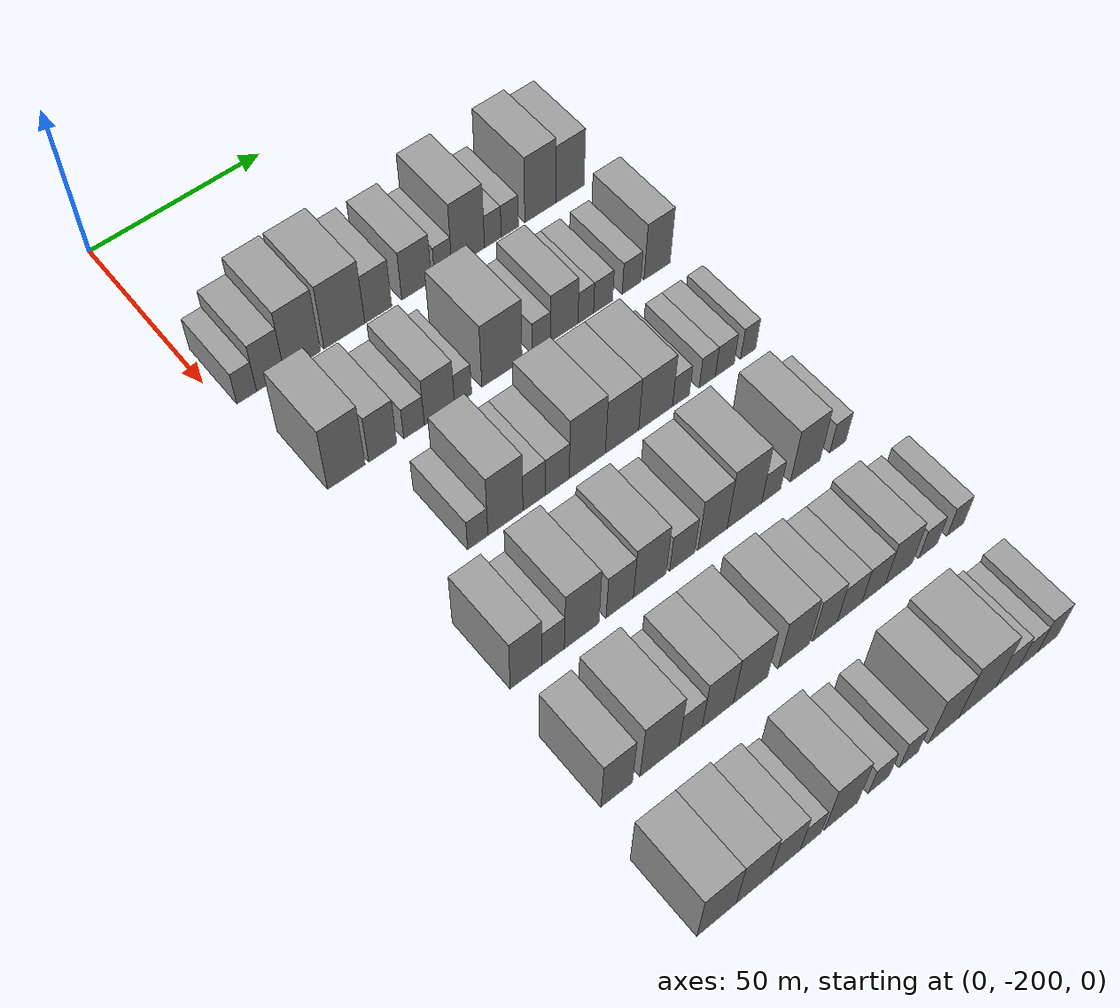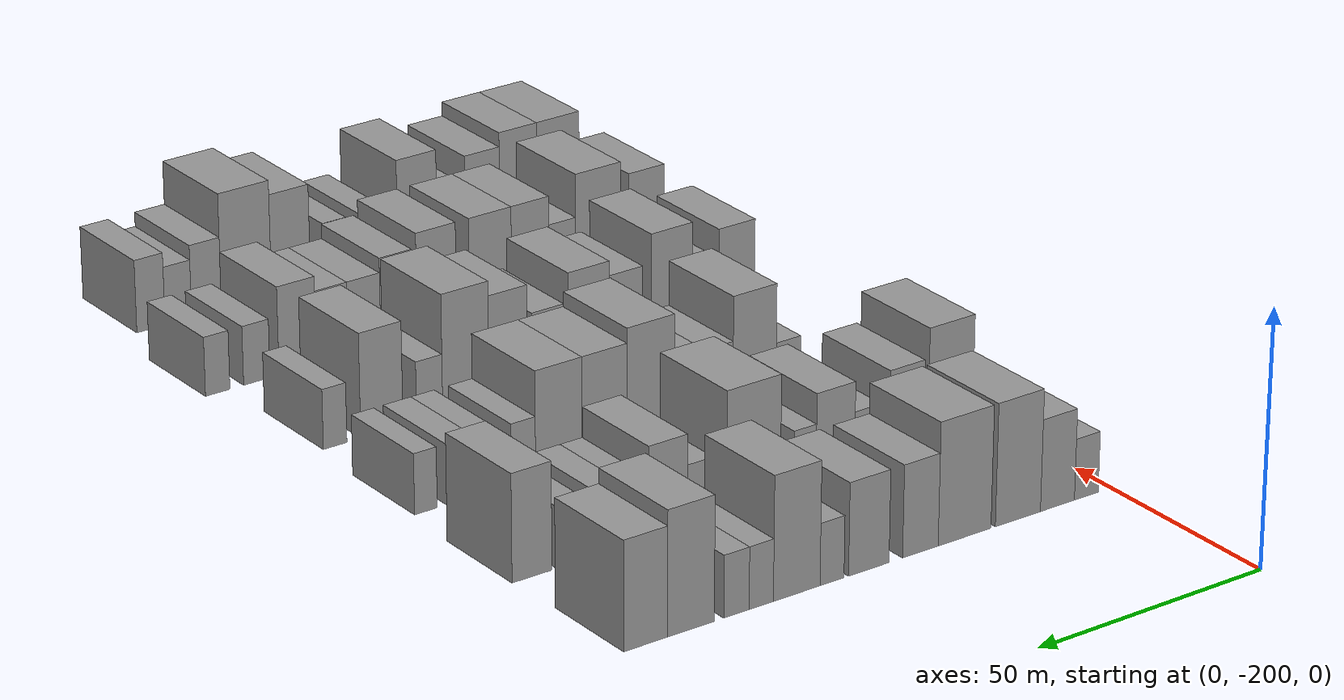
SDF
<sdf version="1.6">
 <world name="default">
  <model name="building_37">
   <static>1</static>
   <pose>50.0000 -194.2799 0 0.000000 0.000000 0.000000</pose>
   <link name="link">
    <pose>0 0 6.00 0 0 0</pose>
    <collision name="collision"><geometry><box><size>20.0000 5.5302 12.0000</size></box></geometry></collision>
    <visual name="visual">
     <cast_shadows>0</cast_shadows>
     <geometry><box><size>20.0000 5.5302 12.0000</size></box></geometry>
     <material>
      <script>
       <uri>model://grey_wall/materials/scripts</uri>
       <uri>model://grey_wall/materials/textures</uri>
       <name>vrc/grey_wall</name>
      </script>
     </material>
    </visual>
   </link>
  </model>
  <model name="building_38">
   <static>1</static>
   <pose>50.0000 -187.5886 0 0.000000 0.000000 0.000000</pose>
   <link name="link">
    <pose>0 0 9.00 0 0 0</pose>
    <collision name="collision"><geometry><box><size>20.0000 7.8523 18.0000</size></box></geometry></collision>
    <visual name="visual">
     <cast_shadows>0</cast_shadows>
     <geometry><box><size>20.0000 7.8523 18.0000</size></box></geometry>
     <material>
      <script>
       <uri>model://grey_wall/materials/scripts</uri>
       <uri>model://grey_wall/materials/textures</uri>
       <name>vrc/grey_wall</name>
      </script>
     </material>
    </visual>
   </link>
  </model>
  <model name="building_39">
   <static>1</static>
   <pose>50.0000 -178.5077 0 0.000000 0.000000 0.000000</pose>
   <link name="link">
    <pose>0 0 12.00 0 0 0</pose>
    <collision name="collision"><geometry><box><size>20.0000 10.3095 24.0000</size></box></geometry></collision>
    <visual name="visual">
     <cast_shadows>0</cast_shadows>
     <geometry><box><size>20.0000 10.3095 24.0000</size></box></geometry>
     <material>
      <script>
       <uri>model://grey_wall/materials/scripts</uri>
       <uri>model://grey_wall/materials/textures</uri>
       <name>vrc/grey_wall</name>
      </script>
     </material>
    </visual>
   </link>
  </model>
  <model name="building_40">
   <static>1</static>
   <pose>50.0000 -166.3984 0 0.000000 0.000000 0.000000</pose>
   <link name="link">
    <pose>0 0 12.00 0 0 0</pose>
    <collision name="collision"><geometry><box><size>20.0000 11.9091 24.0000</size></box></geometry></collision>
    <visual name="visual">
     <cast_shadows>0</cast_shadows>
     <geometry><box><size>20.0000 11.9091 24.0000</size></box></geometry>
     <material>
      <script>
       <uri>model://grey_wall/materials/scripts</uri>
       <uri>model://grey_wall/materials/textures</uri>
       <name>vrc/grey_wall</name>
      </script>
     </material>
    </visual>
   </link>
  </model>
  <model name="building_41">
   <static>1</static>
   <pose>50.0000 -156.4728 0 0.000000 0.000000 0.000000</pose>
   <link name="link">
    <pose>0 0 9.00 0 0 0</pose>
    <collision name="collision"><geometry><box><size>20.0000 7.9420 18.0000</size></box></geometry></collision>
    <visual name="visual">
     <cast_shadows>0</cast_shadows>
     <geometry><box><size>20.0000 7.9420 18.0000</size></box></geometry>
     <material>
      <script>
       <uri>model://grey_wall/materials/scripts</uri>
       <uri>model://grey_wall/materials/textures</uri>
       <name>vrc/grey_wall</name>
      </script>
     </material>
    </visual>
   </link>
  </model>
  <model name="building_42">
   <static>1</static>
   <pose>50.0000 -145.0451 0 0.000000 0.000000 0.000000</pose>
   <link name="link">
    <pose>0 0 9.00 0 0 0</pose>
    <collision name="collision"><geometry><box><size>20.0000 8.9133 18.0000</size></box></geometry></collision>
    <visual name="visual">
     <cast_shadows>0</cast_shadows>
     <geometry><box><size>20.0000 8.9133 18.0000</size></box></geometry>
     <material>
      <script>
       <uri>model://grey_wall/materials/scripts</uri>
       <uri>model://grey_wall/materials/textures</uri>
       <name>vrc/grey_wall</name>
      </script>
     </material>
    </visual>
   </link>
  </model>
  <model name="building_43">
   <static>1</static>
   <pose>50.0000 -136.9729 0 0.000000 0.000000 0.000000</pose>
   <link name="link">
    <pose>0 0 6.00 0 0 0</pose>
    <collision name="collision"><geometry><box><size>20.0000 5.2310 12.0000</size></box></geometry></collision>
    <visual name="visual">
     <cast_shadows>0</cast_shadows>
     <geometry><box><size>20.0000 5.2310 12.0000</size></box></geometry>
     <material>
      <script>
       <uri>model://grey_wall/materials/scripts</uri>
       <uri>model://grey_wall/materials/textures</uri>
       <name>vrc/grey_wall</name>
      </script>
     </material>
    </visual>
   </link>
  </model>
  <model name="building_44">
   <static>1</static>
   <pose>50.0000 -129.3180 0 0.000000 0.000000 0.000000</pose>
   <link name="link">
    <pose>0 0 12.00 0 0 0</pose>
    <collision name="collision"><geometry><box><size>20.0000 10.0789 24.0000</size></box></geometry></collision>
    <visual name="visual">
     <cast_shadows>0</cast_shadows>
     <geometry><box><size>20.0000 10.0789 24.0000</size></box></geometry>
     <material>
      <script>
       <uri>model://grey_wall/materials/scripts</uri>
       <uri>model://grey_wall/materials/textures</uri>
       <name>vrc/grey_wall</name>
      </script>
     </material>
    </visual>
   </link>
  </model>
  <model name="building_45">
   <static>1</static>
   <pose>50.0000 -121.6777 0 0.000000 0.000000 0.000000</pose>
   <link name="link">
    <pose>0 0 6.00 0 0 0</pose>
    <collision name="collision"><geometry><box><size>20.0000 5.2017 12.0000</size></box></geometry></collision>
    <visual name="visual">
     <cast_shadows>0</cast_shadows>
     <geometry><box><size>20.0000 5.2017 12.0000</size></box></geometry>
     <material>
      <script>
       <uri>model://grey_wall/materials/scripts</uri>
       <uri>model://grey_wall/materials/textures</uri>
       <name>vrc/grey_wall</name>
      </script>
     </material>
    </visual>
   </link>
  </model>
  <model name="building_46">
   <static>1</static>
   <pose>50.0000 -116.3728 0 0.000000 0.000000 0.000000</pose>
   <link name="link">
    <pose>0 0 6.00 0 0 0</pose>
    <collision name="collision"><geometry><box><size>20.0000 5.4082 12.0000</size></box></geometry></collision>
    <visual name="visual">
     <cast_shadows>0</cast_shadows>
     <geometry><box><size>20.0000 5.4082 12.0000</size></box></geometry>
     <material>
      <script>
       <uri>model://grey_wall/materials/scripts</uri>
       <uri>model://grey_wall/materials/textures</uri>
       <name>vrc/grey_wall</name>
      </script>
     </material>
    </visual>
   </link>
  </model>
  <model name="building_47">
   <static>1</static>
   <pose>50.0000 -106.7435 0 0.000000 0.000000 0.000000</pose>
   <link name="link">
    <pose>0 0 12.00 0 0 0</pose>
    <collision name="collision"><geometry><box><size>20.0000 9.8505 24.0000</size></box></geometry></collision>
    <visual name="visual">
     <cast_shadows>0</cast_shadows>
     <geometry><box><size>20.0000 9.8505 24.0000</size></box></geometry>
     <material>
      <script>
       <uri>model://grey_wall/materials/scripts</uri>
       <uri>model://grey_wall/materials/textures</uri>
       <name>vrc/grey_wall</name>
      </script>
     </material>
    </visual>
   </link>
  </model>
  <model name="building_48">
   <static>1</static>
   <pose>50.0000 -97.2325 0 0.000000 0.000000 0.000000</pose>
   <link name="link">
    <pose>0 0 10.50 0 0 0</pose>
    <collision name="collision"><geometry><box><size>20.0000 9.1715 21.0000</size></box></geometry></collision>
    <visual name="visual">
     <cast_shadows>0</cast_shadows>
     <geometry><box><size>20.0000 9.1715 21.0000</size></box></geometry>
     <material>
      <script>
       <uri>model://grey_wall/materials/scripts</uri>
       <uri>model://grey_wall/materials/textures</uri>
       <name>vrc/grey_wall</name>
      </script>
     </material>
    </visual>
   </link>
  </model>
  <model name="building_160">
   <static>1</static>
   <pose>82.0000 -188.8581 0 0.000000 0.000000 0.000000</pose>
   <link name="link">
    <pose>0 0 12.00 0 0 0</pose>
    <collision name="collision"><geometry><box><size>20.0000 10.4176 24.0000</size></box></geometry></collision>
    <visual name="visual">
     <cast_shadows>0</cast_shadows>
     <geometry><box><size>20.0000 10.4176 24.0000</size></box></geometry>
     <material>
      <script>
       <uri>model://grey_wall/materials/scripts</uri>
       <uri>model://grey_wall/materials/textures</uri>
       <name>vrc/grey_wall</name>
      </script>
     </material>
    </visual>
   </link>
  </model>
  <model name="building_161">
   <static>1</static>
   <pose>82.0000 -178.6854 0 0.000000 0.000000 0.000000</pose>
   <link name="link">
    <pose>0 0 9.00 0 0 0</pose>
    <collision name="collision"><geometry><box><size>20.0000 7.9278 18.0000</size></box></geometry></collision>
    <visual name="visual">
     <cast_shadows>0</cast_shadows>
     <geometry><box><size>20.0000 7.9278 18.0000</size></box></geometry>
     <material>
      <script>
       <uri>model://grey_wall/materials/scripts</uri>
       <uri>model://grey_wall/materials/textures</uri>
       <name>vrc/grey_wall</name>
      </script>
     </material>
    </visual>
   </link>
  </model>
  <model name="building_162">
   <static>1</static>
   <pose>82.0000 -169.7646 0 0.000000 0.000000 0.000000</pose>
   <link name="link">
    <pose>0 0 6.00 0 0 0</pose>
    <collision name="collision"><geometry><box><size>20.0000 5.9140 12.0000</size></box></geometry></collision>
    <visual name="visual">
     <cast_shadows>0</cast_shadows>
     <geometry><box><size>20.0000 5.9140 12.0000</size></box></geometry>
     <material>
      <script>
       <uri>model://grey_wall/materials/scripts</uri>
       <uri>model://grey_wall/materials/textures</uri>
       <name>vrc/grey_wall</name>
      </script>
     </material>
    </visual>
   </link>
  </model>
  <model name="building_163">
   <static>1</static>
   <pose>82.0000 -162.4492 0 0.000000 0.000000 0.000000</pose>
   <link name="link">
    <pose>0 0 9.00 0 0 0</pose>
    <collision name="collision"><geometry><box><size>20.0000 8.7168 18.0000</size></box></geometry></collision>
    <visual name="visual">
     <cast_shadows>0</cast_shadows>
     <geometry><box><size>20.0000 8.7168 18.0000</size></box></geometry>
     <material>
      <script>
       <uri>model://grey_wall/materials/scripts</uri>
       <uri>model://grey_wall/materials/textures</uri>
       <name>vrc/grey_wall</name>
      </script>
     </material>
    </visual>
   </link>
  </model>
  <model name="building_164">
   <static>1</static>
   <pose>82.0000 -155.5896 0 0.000000 0.000000 0.000000</pose>
   <link name="link">
    <pose>0 0 6.00 0 0 0</pose>
    <collision name="collision"><geometry><box><size>20.0000 5.0024 12.0000</size></box></geometry></collision>
    <visual name="visual">
     <cast_shadows>0</cast_shadows>
     <geometry><box><size>20.0000 5.0024 12.0000</size></box></geometry>
     <material>
      <script>
       <uri>model://grey_wall/materials/scripts</uri>
       <uri>model://grey_wall/materials/textures</uri>
       <name>vrc/grey_wall</name>
      </script>
     </material>
    </visual>
   </link>
  </model>
  <model name="building_165">
   <static>1</static>
   <pose>82.0000 -144.1120 0 0.000000 0.000000 0.000000</pose>
   <link name="link">
    <pose>0 0 12.00 0 0 0</pose>
    <collision name="collision"><geometry><box><size>20.0000 11.9527 24.0000</size></box></geometry></collision>
    <visual name="visual">
     <cast_shadows>0</cast_shadows>
     <geometry><box><size>20.0000 11.9527 24.0000</size></box></geometry>
     <material>
      <script>
       <uri>model://grey_wall/materials/scripts</uri>
       <uri>model://grey_wall/materials/textures</uri>
       <name>vrc/grey_wall</name>
      </script>
     </material>
    </visual>
   </link>
  </model>
  <model name="building_166">
   <static>1</static>
   <pose>82.0000 -132.3422 0 0.000000 0.000000 0.000000</pose>
   <link name="link">
    <pose>0 0 6.00 0 0 0</pose>
    <collision name="collision"><geometry><box><size>20.0000 5.5869 12.0000</size></box></geometry></collision>
    <visual name="visual">
     <cast_shadows>0</cast_shadows>
     <geometry><box><size>20.0000 5.5869 12.0000</size></box></geometry>
     <material>
      <script>
       <uri>model://grey_wall/materials/scripts</uri>
       <uri>model://grey_wall/materials/textures</uri>
       <name>vrc/grey_wall</name>
      </script>
     </material>
    </visual>
   </link>
  </model>
  <model name="building_167">
   <static>1</static>
   <pose>82.0000 -125.3173 0 0.000000 0.000000 0.000000</pose>
   <link name="link">
    <pose>0 0 9.00 0 0 0</pose>
    <collision name="collision"><geometry><box><size>20.0000 8.4630 18.0000</size></box></geometry></collision>
    <visual name="visual">
     <cast_shadows>0</cast_shadows>
     <geometry><box><size>20.0000 8.4630 18.0000</size></box></geometry>
     <material>
      <script>
       <uri>model://grey_wall/materials/scripts</uri>
       <uri>model://grey_wall/materials/textures</uri>
       <name>vrc/grey_wall</name>
      </script>
     </material>
    </visual>
   </link>
  </model>
  <model name="building_168">
   <static>1</static>
   <pose>82.0000 -118.6710 0 0.000000 0.000000 0.000000</pose>
   <link name="link">
    <pose>0 0 6.00 0 0 0</pose>
    <collision name="collision"><geometry><box><size>20.0000 4.8297 12.0000</size></box></geometry></collision>
    <visual name="visual">
     <cast_shadows>0</cast_shadows>
     <geometry><box><size>20.0000 4.8297 12.0000</size></box></geometry>
     <material>
      <script>
       <uri>model://grey_wall/materials/scripts</uri>
       <uri>model://grey_wall/materials/textures</uri>
       <name>vrc/grey_wall</name>
      </script>
     </material>
    </visual>
   </link>
  </model>
  <model name="building_169">
   <static>1</static>
   <pose>82.0000 -113.2681 0 0.000000 0.000000 0.000000</pose>
   <link name="link">
    <pose>0 0 6.00 0 0 0</pose>
    <collision name="collision"><geometry><box><size>20.0000 5.9760 12.0000</size></box></geometry></collision>
    <visual name="visual">
     <cast_shadows>0</cast_shadows>
     <geometry><box><size>20.0000 5.9760 12.0000</size></box></geometry>
     <material>
      <script>
       <uri>model://grey_wall/materials/scripts</uri>
       <uri>model://grey_wall/materials/textures</uri>
       <name>vrc/grey_wall</name>
      </script>
     </material>
    </visual>
   </link>
  </model>
  <model name="building_170">
   <static>1</static>
   <pose>82.0000 -104.3224 0 0.000000 0.000000 0.000000</pose>
   <link name="link">
    <pose>0 0 6.00 0 0 0</pose>
    <collision name="collision"><geometry><box><size>20.0000 5.9154 12.0000</size></box></geometry></collision>
    <visual name="visual">
     <cast_shadows>0</cast_shadows>
     <geometry><box><size>20.0000 5.9154 12.0000</size></box></geometry>
     <material>
      <script>
       <uri>model://grey_wall/materials/scripts</uri>
       <uri>model://grey_wall/materials/textures</uri>
       <name>vrc/grey_wall</name>
      </script>
     </material>
    </visual>
   </link>
  </model>
  <model name="building_171">
   <static>1</static>
   <pose>82.0000 -96.1607 0 0.000000 0.000000 0.000000</pose>
   <link name="link">
    <pose>0 0 10.50 0 0 0</pose>
    <collision name="collision"><geometry><box><size>20.0000 8.4081 21.0000</size></box></geometry></collision>
    <visual name="visual">
     <cast_shadows>0</cast_shadows>
     <geometry><box><size>20.0000 8.4081 21.0000</size></box></geometry>
     <material>
      <script>
       <uri>model://grey_wall/materials/scripts</uri>
       <uri>model://grey_wall/materials/textures</uri>
       <name>vrc/grey_wall</name>
      </script>
     </material>
    </visual>
   </link>
  </model>
  <model name="building_273">
   <static>1</static>
   <pose>114.0000 -176.2179 0 0.000000 0.000000 0.000000</pose>
   <link name="link">
    <pose>0 0 6.00 0 0 0</pose>
    <collision name="collision"><geometry><box><size>20.0000 5.6674 12.0000</size></box></geometry></collision>
    <visual name="visual">
     <cast_shadows>0</cast_shadows>
     <geometry><box><size>20.0000 5.6674 12.0000</size></box></geometry>
     <material>
      <script>
       <uri>model://grey_wall/materials/scripts</uri>
       <uri>model://grey_wall/materials/textures</uri>
       <name>vrc/grey_wall</name>
      </script>
     </material>
    </visual>
   </link>
  </model>
  <model name="building_274">
   <static>1</static>
   <pose>114.0000 -168.4222 0 0.000000 0.000000 0.000000</pose>
   <link name="link">
    <pose>0 0 12.00 0 0 0</pose>
    <collision name="collision"><geometry><box><size>20.0000 9.9239 24.0000</size></box></geometry></collision>
    <visual name="visual">
     <cast_shadows>0</cast_shadows>
     <geometry><box><size>20.0000 9.9239 24.0000</size></box></geometry>
     <material>
      <script>
       <uri>model://grey_wall/materials/scripts</uri>
       <uri>model://grey_wall/materials/textures</uri>
       <name>vrc/grey_wall</name>
      </script>
     </material>
    </visual>
   </link>
  </model>
  <model name="building_275">
   <static>1</static>
   <pose>114.0000 -160.2711 0 0.000000 0.000000 0.000000</pose>
   <link name="link">
    <pose>0 0 7.50 0 0 0</pose>
    <collision name="collision"><geometry><box><size>20.0000 6.3784 15.0000</size></box></geometry></collision>
    <visual name="visual">
     <cast_shadows>0</cast_shadows>
     <geometry><box><size>20.0000 6.3784 15.0000</size></box></geometry>
     <material>
      <script>
       <uri>model://grey_wall/materials/scripts</uri>
       <uri>model://grey_wall/materials/textures</uri>
       <name>vrc/grey_wall</name>
      </script>
     </material>
    </visual>
   </link>
  </model>
  <model name="building_276">
   <static>1</static>
   <pose>114.0000 -153.6203 0 0.000000 0.000000 0.000000</pose>
   <link name="link">
    <pose>0 0 7.50 0 0 0</pose>
    <collision name="collision"><geometry><box><size>20.0000 6.9232 15.0000</size></box></geometry></collision>
    <visual name="visual">
     <cast_shadows>0</cast_shadows>
     <geometry><box><size>20.0000 6.9232 15.0000</size></box></geometry>
     <material>
      <script>
       <uri>model://grey_wall/materials/scripts</uri>
       <uri>model://grey_wall/materials/textures</uri>
       <name>vrc/grey_wall</name>
      </script>
     </material>
    </visual>
   </link>
  </model>
  <model name="building_277">
   <static>1</static>
   <pose>114.0000 -144.8276 0 0.000000 0.000000 0.000000</pose>
   <link name="link">
    <pose>0 0 12.00 0 0 0</pose>
    <collision name="collision"><geometry><box><size>20.0000 10.6622 24.0000</size></box></geometry></collision>
    <visual name="visual">
     <cast_shadows>0</cast_shadows>
     <geometry><box><size>20.0000 10.6622 24.0000</size></box></geometry>
     <material>
      <script>
       <uri>model://grey_wall/materials/scripts</uri>
       <uri>model://grey_wall/materials/textures</uri>
       <name>vrc/grey_wall</name>
      </script>
     </material>
    </visual>
   </link>
  </model>
  <model name="building_278">
   <static>1</static>
   <pose>114.0000 -134.5080 0 0.000000 0.000000 0.000000</pose>
   <link name="link">
    <pose>0 0 10.50 0 0 0</pose>
    <collision name="collision"><geometry><box><size>20.0000 9.9769 21.0000</size></box></geometry></collision>
    <visual name="visual">
     <cast_shadows>0</cast_shadows>
     <geometry><box><size>20.0000 9.9769 21.0000</size></box></geometry>
     <material>
      <script>
       <uri>model://grey_wall/materials/scripts</uri>
       <uri>model://grey_wall/materials/textures</uri>
       <name>vrc/grey_wall</name>
      </script>
     </material>
    </visual>
   </link>
  </model>
  <model name="building_279">
   <static>1</static>
   <pose>114.0000 -124.3840 0 0.000000 0.000000 0.000000</pose>
   <link name="link">
    <pose>0 0 10.50 0 0 0</pose>
    <collision name="collision"><geometry><box><size>20.0000 10.2712 21.0000</size></box></geometry></collision>
    <visual name="visual">
     <cast_shadows>0</cast_shadows>
     <geometry><box><size>20.0000 10.2712 21.0000</size></box></geometry>
     <material>
      <script>
       <uri>model://grey_wall/materials/scripts</uri>
       <uri>model://grey_wall/materials/textures</uri>
       <name>vrc/grey_wall</name>
      </script>
     </material>
    </visual>
   </link>
  </model>
  <model name="building_280">
   <static>1</static>
   <pose>114.0000 -116.6185 0 0.000000 0.000000 0.000000</pose>
   <link name="link">
    <pose>0 0 6.00 0 0 0</pose>
    <collision name="collision"><geometry><box><size>20.0000 5.2597 12.0000</size></box></geometry></collision>
    <visual name="visual">
     <cast_shadows>0</cast_shadows>
     <geometry><box><size>20.0000 5.2597 12.0000</size></box></geometry>
     <material>
      <script>
       <uri>model://grey_wall/materials/scripts</uri>
       <uri>model://grey_wall/materials/textures</uri>
       <name>vrc/grey_wall</name>
      </script>
     </material>
    </visual>
   </link>
  </model>
  <model name="building_281">
   <static>1</static>
   <pose>114.0000 -108.4546 0 0.000000 0.000000 0.000000</pose>
   <link name="link">
    <pose>0 0 6.00 0 0 0</pose>
    <collision name="collision"><geometry><box><size>20.0000 5.0680 12.0000</size></box></geometry></collision>
    <visual name="visual">
     <cast_shadows>0</cast_shadows>
     <geometry><box><size>20.0000 5.0680 12.0000</size></box></geometry>
     <material>
      <script>
       <uri>model://grey_wall/materials/scripts</uri>
       <uri>model://grey_wall/materials/textures</uri>
       <name>vrc/grey_wall</name>
      </script>
     </material>
    </visual>
   </link>
  </model>
  <model name="building_282">
   <static>1</static>
   <pose>114.0000 -102.9294 0 0.000000 0.000000 0.000000</pose>
   <link name="link">
    <pose>0 0 6.00 0 0 0</pose>
    <collision name="collision"><geometry><box><size>20.0000 5.9823 12.0000</size></box></geometry></collision>
    <visual name="visual">
     <cast_shadows>0</cast_shadows>
     <geometry><box><size>20.0000 5.9823 12.0000</size></box></geometry>
     <material>
      <script>
       <uri>model://grey_wall/materials/scripts</uri>
       <uri>model://grey_wall/materials/textures</uri>
       <name>vrc/grey_wall</name>
      </script>
     </material>
    </visual>
   </link>
  </model>
  <model name="building_283">
   <static>1</static>
   <pose>114.0000 -95.5291 0 0.000000 0.000000 0.000000</pose>
   <link name="link">
    <pose>0 0 6.00 0 0 0</pose>
    <collision name="collision"><geometry><box><size>20.0000 4.8183 12.0000</size></box></geometry></collision>
    <visual name="visual">
     <cast_shadows>0</cast_shadows>
     <geometry><box><size>20.0000 4.8183 12.0000</size></box></geometry>
     <material>
      <script>
       <uri>model://grey_wall/materials/scripts</uri>
       <uri>model://grey_wall/materials/textures</uri>
       <name>vrc/grey_wall</name>
      </script>
     </material>
    </visual>
   </link>
  </model>
  <model name="building_390">
   <static>1</static>
   <pose>146.0000 -188.2562 0 0.000000 0.000000 0.000000</pose>
   <link name="link">
    <pose>0 0 10.50 0 0 0</pose>
    <collision name="collision"><geometry><box><size>20.0000 8.5476 21.0000</size></box></geometry></collision>
    <visual name="visual">
     <cast_shadows>0</cast_shadows>
     <geometry><box><size>20.0000 8.5476 21.0000</size></box></geometry>
     <material>
      <script>
       <uri>model://grey_wall/materials/scripts</uri>
       <uri>model://grey_wall/materials/textures</uri>
       <name>vrc/grey_wall</name>
      </script>
     </material>
    </visual>
   </link>
  </model>
  <model name="building_391">
   <static>1</static>
   <pose>146.0000 -180.8974 0 0.000000 0.000000 0.000000</pose>
   <link name="link">
    <pose>0 0 7.50 0 0 0</pose>
    <collision name="collision"><geometry><box><size>20.0000 6.1699 15.0000</size></box></geometry></collision>
    <visual name="visual">
     <cast_shadows>0</cast_shadows>
     <geometry><box><size>20.0000 6.1699 15.0000</size></box></geometry>
     <material>
      <script>
       <uri>model://grey_wall/materials/scripts</uri>
       <uri>model://grey_wall/materials/textures</uri>
       <name>vrc/grey_wall</name>
      </script>
     </material>
    </visual>
   </link>
  </model>
  <model name="building_392">
   <static>1</static>
   <pose>146.0000 -173.0046 0 0.000000 0.000000 0.000000</pose>
   <link name="link">
    <pose>0 0 12.00 0 0 0</pose>
    <collision name="collision"><geometry><box><size>20.0000 9.6157 24.0000</size></box></geometry></collision>
    <visual name="visual">
     <cast_shadows>0</cast_shadows>
     <geometry><box><size>20.0000 9.6157 24.0000</size></box></geometry>
     <material>
      <script>
       <uri>model://grey_wall/materials/scripts</uri>
       <uri>model://grey_wall/materials/textures</uri>
       <name>vrc/grey_wall</name>
      </script>
     </material>
    </visual>
   </link>
  </model>
  <model name="building_393">
   <static>1</static>
   <pose>146.0000 -162.3353 0 0.000000 0.000000 0.000000</pose>
   <link name="link">
    <pose>0 0 9.00 0 0 0</pose>
    <collision name="collision"><geometry><box><size>20.0000 7.7229 18.0000</size></box></geometry></collision>
    <visual name="visual">
     <cast_shadows>0</cast_shadows>
     <geometry><box><size>20.0000 7.7229 18.0000</size></box></geometry>
     <material>
      <script>
       <uri>model://grey_wall/materials/scripts</uri>
       <uri>model://grey_wall/materials/textures</uri>
       <name>vrc/grey_wall</name>
      </script>
     </material>
    </visual>
   </link>
  </model>
  <model name="building_394">
   <static>1</static>
   <pose>146.0000 -153.7605 0 0.000000 0.000000 0.000000</pose>
   <link name="link">
    <pose>0 0 10.50 0 0 0</pose>
    <collision name="collision"><geometry><box><size>20.0000 9.4267 21.0000</size></box></geometry></collision>
    <visual name="visual">
     <cast_shadows>0</cast_shadows>
     <geometry><box><size>20.0000 9.4267 21.0000</size></box></geometry>
     <material>
      <script>
       <uri>model://grey_wall/materials/scripts</uri>
       <uri>model://grey_wall/materials/textures</uri>
       <name>vrc/grey_wall</name>
      </script>
     </material>
    </visual>
   </link>
  </model>
  <model name="building_395">
   <static>1</static>
   <pose>146.0000 -144.4049 0 0.000000 0.000000 0.000000</pose>
   <link name="link">
    <pose>0 0 7.50 0 0 0</pose>
    <collision name="collision"><geometry><box><size>20.0000 7.2845 15.0000</size></box></geometry></collision>
    <visual name="visual">
     <cast_shadows>0</cast_shadows>
     <geometry><box><size>20.0000 7.2845 15.0000</size></box></geometry>
     <material>
      <script>
       <uri>model://grey_wall/materials/scripts</uri>
       <uri>model://grey_wall/materials/textures</uri>
       <name>vrc/grey_wall</name>
      </script>
     </material>
    </visual>
   </link>
  </model>
  <model name="building_396">
   <static>1</static>
   <pose>146.0000 -135.4375 0 0.000000 0.000000 0.000000</pose>
   <link name="link">
    <pose>0 0 10.50 0 0 0</pose>
    <collision name="collision"><geometry><box><size>20.0000 8.6502 21.0000</size></box></geometry></collision>
    <visual name="visual">
     <cast_shadows>0</cast_shadows>
     <geometry><box><size>20.0000 8.6502 21.0000</size></box></geometry>
     <material>
      <script>
       <uri>model://grey_wall/materials/scripts</uri>
       <uri>model://grey_wall/materials/textures</uri>
       <name>vrc/grey_wall</name>
      </script>
     </material>
    </visual>
   </link>
  </model>
  <model name="building_397">
   <static>1</static>
   <pose>146.0000 -125.9174 0 0.000000 0.000000 0.000000</pose>
   <link name="link">
    <pose>0 0 12.00 0 0 0</pose>
    <collision name="collision"><geometry><box><size>20.0000 10.3900 24.0000</size></box></geometry></collision>
    <visual name="visual">
     <cast_shadows>0</cast_shadows>
     <geometry><box><size>20.0000 10.3900 24.0000</size></box></geometry>
     <material>
      <script>
       <uri>model://grey_wall/materials/scripts</uri>
       <uri>model://grey_wall/materials/textures</uri>
       <name>vrc/grey_wall</name>
      </script>
     </material>
    </visual>
   </link>
  </model>
  <model name="building_398">
   <static>1</static>
   <pose>146.0000 -117.8290 0 0.000000 0.000000 0.000000</pose>
   <link name="link">
    <pose>0 0 6.00 0 0 0</pose>
    <collision name="collision"><geometry><box><size>20.0000 5.7867 12.0000</size></box></geometry></collision>
    <visual name="visual">
     <cast_shadows>0</cast_shadows>
     <geometry><box><size>20.0000 5.7867 12.0000</size></box></geometry>
     <material>
      <script>
       <uri>model://grey_wall/materials/scripts</uri>
       <uri>model://grey_wall/materials/textures</uri>
       <name>vrc/grey_wall</name>
      </script>
     </material>
    </visual>
   </link>
  </model>
  <model name="building_399">
   <static>1</static>
   <pose>146.0000 -107.3196 0 0.000000 0.000000 0.000000</pose>
   <link name="link">
    <pose>0 0 10.50 0 0 0</pose>
    <collision name="collision"><geometry><box><size>20.0000 9.2320 21.0000</size></box></geometry></collision>
    <visual name="visual">
     <cast_shadows>0</cast_shadows>
     <geometry><box><size>20.0000 9.2320 21.0000</size></box></geometry>
     <material>
      <script>
       <uri>model://grey_wall/materials/scripts</uri>
       <uri>model://grey_wall/materials/textures</uri>
       <name>vrc/grey_wall</name>
      </script>
     </material>
    </visual>
   </link>
  </model>
  <model name="building_400">
   <static>1</static>
   <pose>146.0000 -97.1501 0 0.000000 0.000000 0.000000</pose>
   <link name="link">
    <pose>0 0 6.00 0 0 0</pose>
    <collision name="collision"><geometry><box><size>20.0000 5.1070 12.0000</size></box></geometry></collision>
    <visual name="visual">
     <cast_shadows>0</cast_shadows>
     <geometry><box><size>20.0000 5.1070 12.0000</size></box></geometry>
     <material>
      <script>
       <uri>model://grey_wall/materials/scripts</uri>
       <uri>model://grey_wall/materials/textures</uri>
       <name>vrc/grey_wall</name>
      </script>
     </material>
    </visual>
   </link>
  </model>
  <model name="building_501">
   <static>1</static>
   <pose>178.0000 -190.2618 0 0.000000 0.000000 0.000000</pose>
   <link name="link">
    <pose>0 0 10.50 0 0 0</pose>
    <collision name="collision"><geometry><box><size>20.0000 8.4058 21.0000</size></box></geometry></collision>
    <visual name="visual">
     <cast_shadows>0</cast_shadows>
     <geometry><box><size>20.0000 8.4058 21.0000</size></box></geometry>
     <material>
      <script>
       <uri>model://grey_wall/materials/scripts</uri>
       <uri>model://grey_wall/materials/textures</uri>
       <name>vrc/grey_wall</name>
      </script>
     </material>
    </visual>
   </link>
  </model>
  <model name="building_502">
   <static>1</static>
   <pose>178.0000 -178.7330 0 0.000000 0.000000 0.000000</pose>
   <link name="link">
    <pose>0 0 12.00 0 0 0</pose>
    <collision name="collision"><geometry><box><size>20.0000 10.6520 24.0000</size></box></geometry></collision>
    <visual name="visual">
     <cast_shadows>0</cast_shadows>
     <geometry><box><size>20.0000 10.6520 24.0000</size></box></geometry>
     <material>
      <script>
       <uri>model://grey_wall/materials/scripts</uri>
       <uri>model://grey_wall/materials/textures</uri>
       <name>vrc/grey_wall</name>
      </script>
     </material>
    </visual>
   </link>
  </model>
  <model name="building_503">
   <static>1</static>
   <pose>178.0000 -170.2459 0 0.000000 0.000000 0.000000</pose>
   <link name="link">
    <pose>0 0 7.50 0 0 0</pose>
    <collision name="collision"><geometry><box><size>20.0000 6.3221 15.0000</size></box></geometry></collision>
    <visual name="visual">
     <cast_shadows>0</cast_shadows>
     <geometry><box><size>20.0000 6.3221 15.0000</size></box></geometry>
     <material>
      <script>
       <uri>model://grey_wall/materials/scripts</uri>
       <uri>model://grey_wall/materials/textures</uri>
       <name>vrc/grey_wall</name>
      </script>
     </material>
    </visual>
   </link>
  </model>
  <model name="building_504">
   <static>1</static>
   <pose>178.0000 -162.7137 0 0.000000 0.000000 0.000000</pose>
   <link name="link">
    <pose>0 0 10.50 0 0 0</pose>
    <collision name="collision"><geometry><box><size>20.0000 8.7425 21.0000</size></box></geometry></collision>
    <visual name="visual">
     <cast_shadows>0</cast_shadows>
     <geometry><box><size>20.0000 8.7425 21.0000</size></box></geometry>
     <material>
      <script>
       <uri>model://grey_wall/materials/scripts</uri>
       <uri>model://grey_wall/materials/textures</uri>
       <name>vrc/grey_wall</name>
      </script>
     </material>
    </visual>
   </link>
  </model>
  <model name="building_505">
   <static>1</static>
   <pose>178.0000 -153.4336 0 0.000000 0.000000 0.000000</pose>
   <link name="link">
    <pose>0 0 10.50 0 0 0</pose>
    <collision name="collision"><geometry><box><size>20.0000 9.8176 21.0000</size></box></geometry></collision>
    <visual name="visual">
     <cast_shadows>0</cast_shadows>
     <geometry><box><size>20.0000 9.8176 21.0000</size></box></geometry>
     <material>
      <script>
       <uri>model://grey_wall/materials/scripts</uri>
       <uri>model://grey_wall/materials/textures</uri>
       <name>vrc/grey_wall</name>
      </script>
     </material>
    </visual>
   </link>
  </model>
  <model name="building_506">
   <static>1</static>
   <pose>178.0000 -141.0076 0 0.000000 0.000000 0.000000</pose>
   <link name="link">
    <pose>0 0 10.50 0 0 0</pose>
    <collision name="collision"><geometry><box><size>20.0000 9.0344 21.0000</size></box></geometry></collision>
    <visual name="visual">
     <cast_shadows>0</cast_shadows>
     <geometry><box><size>20.0000 9.0344 21.0000</size></box></geometry>
     <material>
      <script>
       <uri>model://grey_wall/materials/scripts</uri>
       <uri>model://grey_wall/materials/textures</uri>
       <name>vrc/grey_wall</name>
      </script>
     </material>
    </visual>
   </link>
  </model>
  <model name="building_507">
   <static>1</static>
   <pose>178.0000 -131.8531 0 0.000000 0.000000 0.000000</pose>
   <link name="link">
    <pose>0 0 9.00 0 0 0</pose>
    <collision name="collision"><geometry><box><size>20.0000 7.2746 18.0000</size></box></geometry></collision>
    <visual name="visual">
     <cast_shadows>0</cast_shadows>
     <geometry><box><size>20.0000 7.2746 18.0000</size></box></geometry>
     <material>
      <script>
       <uri>model://grey_wall/materials/scripts</uri>
       <uri>model://grey_wall/materials/textures</uri>
       <name>vrc/grey_wall</name>
      </script>
     </material>
    </visual>
   </link>
  </model>
  <model name="building_508">
   <static>1</static>
   <pose>178.0000 -124.5197 0 0.000000 0.000000 0.000000</pose>
   <link name="link">
    <pose>0 0 7.50 0 0 0</pose>
    <collision name="collision"><geometry><box><size>20.0000 7.3921 15.0000</size></box></geometry></collision>
    <visual name="visual">
     <cast_shadows>0</cast_shadows>
     <geometry><box><size>20.0000 7.3921 15.0000</size></box></geometry>
     <material>
      <script>
       <uri>model://grey_wall/materials/scripts</uri>
       <uri>model://grey_wall/materials/textures</uri>
       <name>vrc/grey_wall</name>
      </script>
     </material>
    </visual>
   </link>
  </model>
  <model name="building_509">
   <static>1</static>
   <pose>178.0000 -117.2830 0 0.000000 0.000000 0.000000</pose>
   <link name="link">
    <pose>0 0 7.50 0 0 0</pose>
    <collision name="collision"><geometry><box><size>20.0000 7.0814 15.0000</size></box></geometry></collision>
    <visual name="visual">
     <cast_shadows>0</cast_shadows>
     <geometry><box><size>20.0000 7.0814 15.0000</size></box></geometry>
     <material>
      <script>
       <uri>model://grey_wall/materials/scripts</uri>
       <uri>model://grey_wall/materials/textures</uri>
       <name>vrc/grey_wall</name>
      </script>
     </material>
    </visual>
   </link>
  </model>
  <model name="building_510">
   <static>1</static>
   <pose>178.0000 -109.5909 0 0.000000 0.000000 0.000000</pose>
   <link name="link">
    <pose>0 0 9.00 0 0 0</pose>
    <collision name="collision"><geometry><box><size>20.0000 8.3028 18.0000</size></box></geometry></collision>
    <visual name="visual">
     <cast_shadows>0</cast_shadows>
     <geometry><box><size>20.0000 8.3028 18.0000</size></box></geometry>
     <material>
      <script>
       <uri>model://grey_wall/materials/scripts</uri>
       <uri>model://grey_wall/materials/textures</uri>
       <name>vrc/grey_wall</name>
      </script>
     </material>
    </visual>
   </link>
  </model>
  <model name="building_511">
   <static>1</static>
   <pose>178.0000 -100.5361 0 0.000000 0.000000 0.000000</pose>
   <link name="link">
    <pose>0 0 6.00 0 0 0</pose>
    <collision name="collision"><geometry><box><size>20.0000 5.8066 12.0000</size></box></geometry></collision>
    <visual name="visual">
     <cast_shadows>0</cast_shadows>
     <geometry><box><size>20.0000 5.8066 12.0000</size></box></geometry>
     <material>
      <script>
       <uri>model://grey_wall/materials/scripts</uri>
       <uri>model://grey_wall/materials/textures</uri>
       <name>vrc/grey_wall</name>
      </script>
     </material>
    </visual>
   </link>
  </model>
  <model name="building_512">
   <static>1</static>
   <pose>178.0000 -91.9683 0 0.000000 0.000000 0.000000</pose>
   <link name="link">
    <pose>0 0 6.00 0 0 0</pose>
    <collision name="collision"><geometry><box><size>20.0000 5.3290 12.0000</size></box></geometry></collision>
    <visual name="visual">
     <cast_shadows>0</cast_shadows>
     <geometry><box><size>20.0000 5.3290 12.0000</size></box></geometry>
     <material>
      <script>
       <uri>model://grey_wall/materials/scripts</uri>
       <uri>model://grey_wall/materials/textures</uri>
       <name>vrc/grey_wall</name>
      </script>
     </material>
    </visual>
   </link>
  </model>
  <model name="building_628">
   <static>1</static>
   <pose>210.0000 -191.7449 0 0.000000 0.000000 0.000000</pose>
   <link name="link">
    <pose>0 0 10.50 0 0 0</pose>
    <collision name="collision"><geometry><box><size>20.0000 10.3050 21.0000</size></box></geometry></collision>
    <visual name="visual">
     <cast_shadows>0</cast_shadows>
     <geometry><box><size>20.0000 10.3050 21.0000</size></box></geometry>
     <material>
      <script>
       <uri>model://grey_wall/materials/scripts</uri>
       <uri>model://grey_wall/materials/textures</uri>
       <name>vrc/grey_wall</name>
      </script>
     </material>
    </visual>
   </link>
  </model>
  <model name="building_629">
   <static>1</static>
   <pose>210.0000 -182.0954 0 0.000000 0.000000 0.000000</pose>
   <link name="link">
    <pose>0 0 10.50 0 0 0</pose>
    <collision name="collision"><geometry><box><size>20.0000 8.9940 21.0000</size></box></geometry></collision>
    <visual name="visual">
     <cast_shadows>0</cast_shadows>
     <geometry><box><size>20.0000 8.9940 21.0000</size></box></geometry>
     <material>
      <script>
       <uri>model://grey_wall/materials/scripts</uri>
       <uri>model://grey_wall/materials/textures</uri>
       <name>vrc/grey_wall</name>
      </script>
     </material>
    </visual>
   </link>
  </model>
  <model name="building_630">
   <static>1</static>
   <pose>210.0000 -173.4573 0 0.000000 0.000000 0.000000</pose>
   <link name="link">
    <pose>0 0 9.00 0 0 0</pose>
    <collision name="collision"><geometry><box><size>20.0000 8.2822 18.0000</size></box></geometry></collision>
    <visual name="visual">
     <cast_shadows>0</cast_shadows>
     <geometry><box><size>20.0000 8.2822 18.0000</size></box></geometry>
     <material>
      <script>
       <uri>model://grey_wall/materials/scripts</uri>
       <uri>model://grey_wall/materials/textures</uri>
       <name>vrc/grey_wall</name>
      </script>
     </material>
    </visual>
   </link>
  </model>
  <model name="building_631">
   <static>1</static>
   <pose>210.0000 -166.4650 0 0.000000 0.000000 0.000000</pose>
   <link name="link">
    <pose>0 0 6.00 0 0 0</pose>
    <collision name="collision"><geometry><box><size>20.0000 5.7024 12.0000</size></box></geometry></collision>
    <visual name="visual">
     <cast_shadows>0</cast_shadows>
     <geometry><box><size>20.0000 5.7024 12.0000</size></box></geometry>
     <material>
      <script>
       <uri>model://grey_wall/materials/scripts</uri>
       <uri>model://grey_wall/materials/textures</uri>
       <name>vrc/grey_wall</name>
      </script>
     </material>
    </visual>
   </link>
  </model>
  <model name="building_632">
   <static>1</static>
   <pose>210.0000 -157.9670 0 0.000000 0.000000 0.000000</pose>
   <link name="link">
    <pose>0 0 10.50 0 0 0</pose>
    <collision name="collision"><geometry><box><size>20.0000 9.2937 21.0000</size></box></geometry></collision>
    <visual name="visual">
     <cast_shadows>0</cast_shadows>
     <geometry><box><size>20.0000 9.2937 21.0000</size></box></geometry>
     <material>
      <script>
       <uri>model://grey_wall/materials/scripts</uri>
       <uri>model://grey_wall/materials/textures</uri>
       <name>vrc/grey_wall</name>
      </script>
     </material>
    </visual>
   </link>
  </model>
  <model name="building_633">
   <static>1</static>
   <pose>210.0000 -147.3532 0 0.000000 0.000000 0.000000</pose>
   <link name="link">
    <pose>0 0 6.00 0 0 0</pose>
    <collision name="collision"><geometry><box><size>20.0000 5.9339 12.0000</size></box></geometry></collision>
    <visual name="visual">
     <cast_shadows>0</cast_shadows>
     <geometry><box><size>20.0000 5.9339 12.0000</size></box></geometry>
     <material>
      <script>
       <uri>model://grey_wall/materials/scripts</uri>
       <uri>model://grey_wall/materials/textures</uri>
       <name>vrc/grey_wall</name>
      </script>
     </material>
    </visual>
   </link>
  </model>
  <model name="building_634">
   <static>1</static>
   <pose>210.0000 -138.6963 0 0.000000 0.000000 0.000000</pose>
   <link name="link">
    <pose>0 0 6.00 0 0 0</pose>
    <collision name="collision"><geometry><box><size>20.0000 5.3798 12.0000</size></box></geometry></collision>
    <visual name="visual">
     <cast_shadows>0</cast_shadows>
     <geometry><box><size>20.0000 5.3798 12.0000</size></box></geometry>
     <material>
      <script>
       <uri>model://grey_wall/materials/scripts</uri>
       <uri>model://grey_wall/materials/textures</uri>
       <name>vrc/grey_wall</name>
      </script>
     </material>
    </visual>
   </link>
  </model>
  <model name="building_635">
   <static>1</static>
   <pose>210.0000 -128.5469 0 0.000000 0.000000 0.000000</pose>
   <link name="link">
    <pose>0 0 10.50 0 0 0</pose>
    <collision name="collision"><geometry><box><size>20.0000 8.9189 21.0000</size></box></geometry></collision>
    <visual name="visual">
     <cast_shadows>0</cast_shadows>
     <geometry><box><size>20.0000 8.9189 21.0000</size></box></geometry>
     <material>
      <script>
       <uri>model://grey_wall/materials/scripts</uri>
       <uri>model://grey_wall/materials/textures</uri>
       <name>vrc/grey_wall</name>
      </script>
     </material>
    </visual>
   </link>
  </model>
  <model name="building_636">
   <static>1</static>
   <pose>210.0000 -118.3975 0 0.000000 0.000000 0.000000</pose>
   <link name="link">
    <pose>0 0 12.00 0 0 0</pose>
    <collision name="collision"><geometry><box><size>20.0000 11.3798 24.0000</size></box></geometry></collision>
    <visual name="visual">
     <cast_shadows>0</cast_shadows>
     <geometry><box><size>20.0000 11.3798 24.0000</size></box></geometry>
     <material>
      <script>
       <uri>model://grey_wall/materials/scripts</uri>
       <uri>model://grey_wall/materials/textures</uri>
       <name>vrc/grey_wall</name>
      </script>
     </material>
    </visual>
   </link>
  </model>
  <model name="building_637">
   <static>1</static>
   <pose>210.0000 -109.3581 0 0.000000 0.000000 0.000000</pose>
   <link name="link">
    <pose>0 0 7.50 0 0 0</pose>
    <collision name="collision"><geometry><box><size>20.0000 6.6991 15.0000</size></box></geometry></collision>
    <visual name="visual">
     <cast_shadows>0</cast_shadows>
     <geometry><box><size>20.0000 6.6991 15.0000</size></box></geometry>
     <material>
      <script>
       <uri>model://grey_wall/materials/scripts</uri>
       <uri>model://grey_wall/materials/textures</uri>
       <name>vrc/grey_wall</name>
      </script>
     </material>
    </visual>
   </link>
  </model>
  <model name="building_638">
   <static>1</static>
   <pose>210.0000 -103.0403 0 0.000000 0.000000 0.000000</pose>
   <link name="link">
    <pose>0 0 6.00 0 0 0</pose>
    <collision name="collision"><geometry><box><size>20.0000 5.9364 12.0000</size></box></geometry></collision>
    <visual name="visual">
     <cast_shadows>0</cast_shadows>
     <geometry><box><size>20.0000 5.9364 12.0000</size></box></geometry>
     <material>
      <script>
       <uri>model://grey_wall/materials/scripts</uri>
       <uri>model://grey_wall/materials/textures</uri>
       <name>vrc/grey_wall</name>
      </script>
     </material>
    </visual>
   </link>
  </model>
  <model name="building_639">
   <static>1</static>
   <pose>210.0000 -96.9388 0 0.000000 0.000000 0.000000</pose>
   <link name="link">
    <pose>0 0 7.50 0 0 0</pose>
    <collision name="collision"><geometry><box><size>20.0000 6.2667 15.0000</size></box></geometry></collision>
    <visual name="visual">
     <cast_shadows>0</cast_shadows>
     <geometry><box><size>20.0000 6.2667 15.0000</size></box></geometry>
     <material>
      <script>
       <uri>model://grey_wall/materials/scripts</uri>
       <uri>model://grey_wall/materials/textures</uri>
       <name>vrc/grey_wall</name>
      </script>
     </material>
    </visual>
   </link>
  </model>
 </world>
</sdf>
